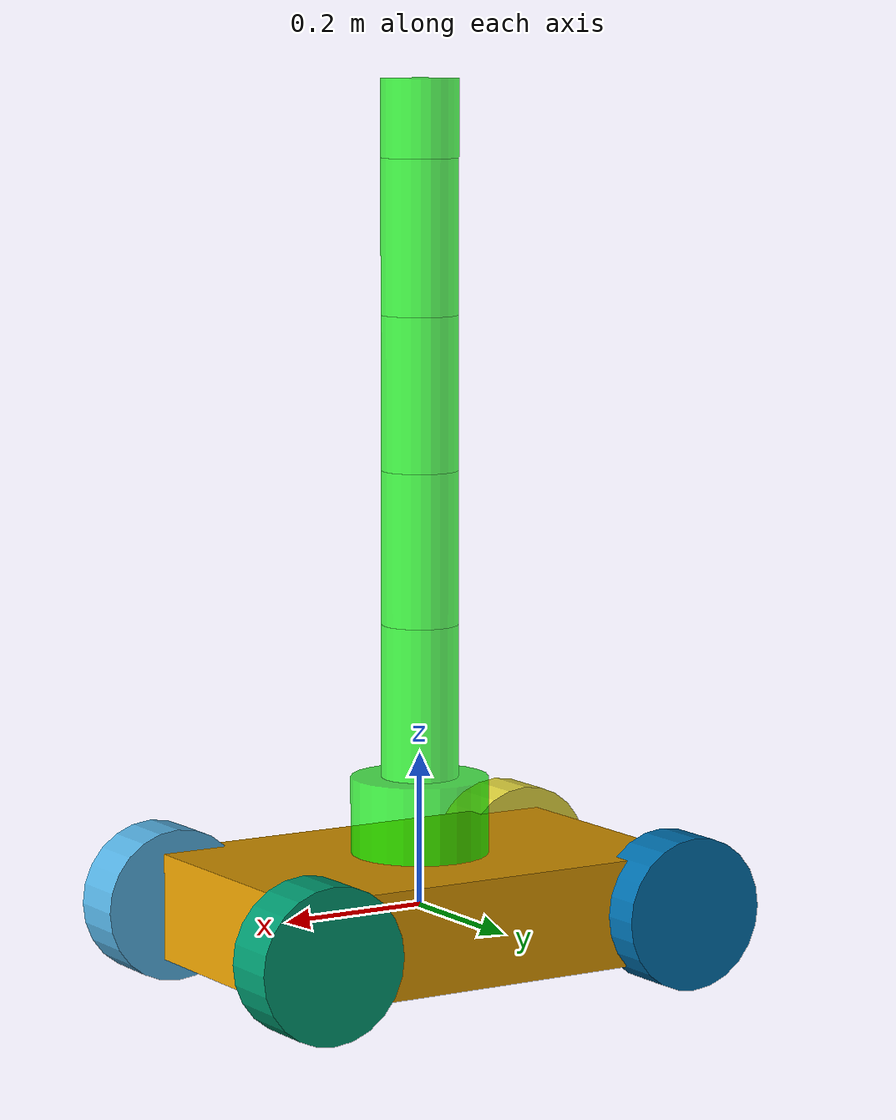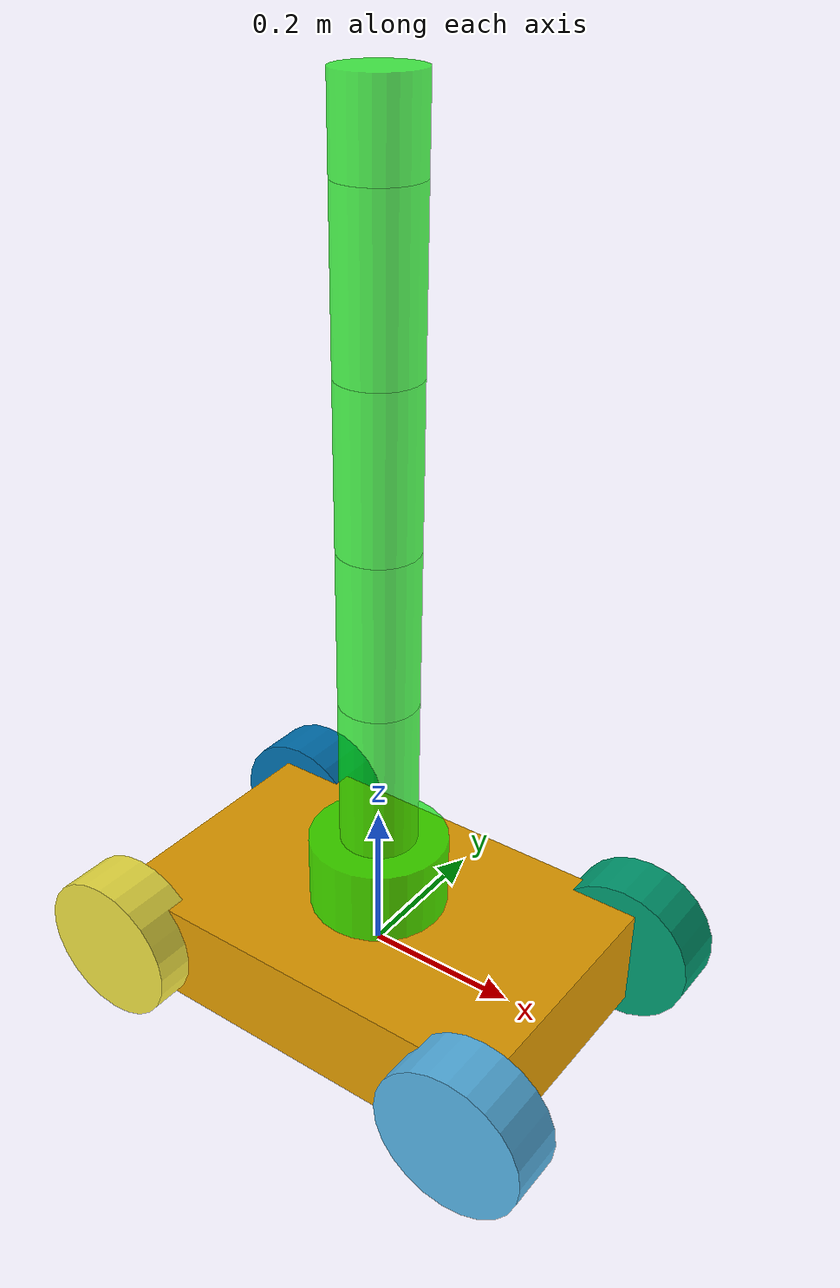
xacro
<?xml version="1.0"?>
<robot name = "youbot" xmlns:xacro="http://www.ros.org/wiki/xacro">

<!--***************************************** WHEELED BASE ******************************************-->
	<link name = "chassis">
		<inertial>
			<mass value = "20"/>
			<origin xyz = "0 0 0" rpy = "0 0 0"/>
			<inertia ixx = "0.5933" ixy = "0" ixz = "0" iyy = "0.7963" iyz = "0" izz = "0.2683"/>
		</inertial>
		<collision>
			<geometry>
					<box  size = "0.580 0.376 0.140"/>
			</geometry>
		</collision>
		<visual>
			<geometry>
					<box  size = "0.580 0.376 0.140 "/>
			</geometry>
		</visual>
	</link>

<!--join wheels with the chassis-->

  <joint name = "chassis__wheel_fl" type = "revolute">
		<origin xyz = "0.270 -0.200 0" rpy = "0 0 0"/>
		<axis xyz= "0 1 0"/>
		<parent link = "chassis"/>
		<child link = "wheel_fl"/>
		<limit effort = "1" velocity = "1" lower = "-3.14" upper = "3.14"/>
	</joint>

	<link name = "wheel_fl">
		<inertial>
			<mass value = "2"/>
			<origin xyz = "0 0 0" rpy = "1.57 0 0"/>
			<inertia ixx = "0.0022" ixy = "0" ixz = "0" iyy = "0.0022" iyz = "0" izz = "0.0025"/>
		</inertial>
		<collision>
			<origin xyz = "0 0 0" rpy = "1.57 0 0"/>
			<geometry>
					<cylinder  radius = "0.05" length = "0.076"/>
			</geometry>
		</collision>
		<visual>
			<origin xyz = "0 0 0" rpy = "1.57 0 0"/>
			<geometry>
					<cylinder  radius = "0.1" length = "0.076"/>
			</geometry>
		</visual>
	</link>

<!--join wheels with the base link-->

	<joint name = "chassis__wheel_fr" type = "revolute">
		<origin xyz = "0.270 0.200 0" rpy = "0 0 0"/>
		<axis xyz= "0 1 0"/>
		<parent link = "chassis"/>
		<child link = "wheel_fr"/>
		<limit effort = "1" velocity = "1" lower = "-3.14" upper = "3.14"/>
	</joint>

	<link name = "wheel_fr">
		<inertial>
			<mass value = "2"/>
			<origin xyz = "0 0 0" rpy = "1.57 0 0"/>
			<inertia ixx = "0.0022" ixy = "0" ixz = "0" iyy = "0.0022" iyz = "0" izz = "0.0025"/>
		</inertial>
		<collision>
			<origin xyz = "0 0 0" rpy = "1.57 0 0"/>
			<geometry>
					<cylinder  radius = "0.05" length = "0.076"/>
			</geometry>
		</collision>
		<visual>
			<origin xyz = "0 0 0" rpy = "1.57 0 0"/>
			<geometry>
					<cylinder  radius = "0.1" length = "0.076"/>
			</geometry>
		</visual>
	</link>

<!--join wheels with the base link-->

	<joint name = "chassis__wheel_rl" type = "revolute">
		<origin xyz = "-0.270 -0.200 0" rpy = "0 0 0"/>
		<axis xyz= "0 1 0"/>
		<parent link = "chassis"/>
		<child link = "wheel_rl"/>
		<limit effort = "1" velocity = "1" lower = "-3.14" upper = "3.14"/>
	</joint>

	<link name = "wheel_rl">
		<inertial>
			<mass value = "2"/>
			<origin xyz = "0 0 0" rpy = "1.57 0 0"/>
			<inertia ixx = "0.0022" ixy = "0" ixz = "0" iyy = "0.0022" iyz = "0" izz = "0.0025"/>
		</inertial>
		<collision>
			<origin xyz = "0 0 0" rpy = "1.57 0 0"/>
			<geometry>
					<cylinder  radius = "0.05" length = "0.076"/>
			</geometry>
		</collision>
		<visual>
			<origin xyz = "0 0 0" rpy = "1.57 0 0"/>
			<geometry>
					<cylinder  radius = "0.1" length = "0.076"/>
			</geometry>
		</visual>
	</link>

<!-- join the wheel to the base -->

	<joint name = "chassis__wheel_rr" type = "revolute">
		<origin xyz = "-0.270 0.200 0" rpy = "0 0 0"/>
		<axis xyz= "0 1 0"/>
		<parent link = "chassis"/>
		<child link = "wheel_rr"/>
		<limit effort = "1" velocity = "1" lower = "-3.14" upper = "3.14"/>
	</joint>

	<link name = "wheel_rr">
		<inertial>
			<mass value = "2"/>
			<origin xyz = "0 0 0" rpy = "1.57 0 0"/>
			<inertia ixx = "0.0022" ixy = "0" ixz = "0" iyy = "0.0022" iyz = "0" izz = "0.0025"/>
		</inertial>
		<collision>
			<origin xyz = "0 0 0" rpy = "1.57 0 0"/>
			<geometry>
					<cylinder  radius = "0.05" length = "0.076"/>
			</geometry>
		</collision>
		<visual>
			<origin xyz = "0 0 0" rpy = "1.57 0 0"/>
			<geometry>
					<cylinder  radius = "0.1" length = "0.076"/>
			</geometry>
		</visual>
	</link>

<!--***************************************** MANIPULATOR ******************************************-->

	<joint name="chassis__base_link" type="fixed">
		<origin xyz="0 0 0.07" rpy="0 0 0"/>
		<axis xyz="0 0 1"/>
    <parent link="chassis"/>
    <child link="base_link"/>
		<limit effort="0" velocity="0" lower="3.14" upper="-3.14"/>
	</joint>

  <link name="base_link">
		<inertial>
			<origin xyz="0 0 0.05" rpy="0 0 0"/>
			<mass value="1.0"/>
			<inertia ixx="0.1458" iyy="0.1458" izz="0.1250" ixy="0" ixz="0" iyz="0"/>
		</inertial>
		<collision>
			<origin xyz="0 0 0.05" rpy="0 0 0"/>
			<geometry>
				<cylinder radius="0.09" length="0.1"/>
			</geometry>
		</collision>
		<visual>
			<origin xyz="0 0 0.05" rpy="0 0 0"/>
			<geometry>
				<cylinder radius="0.09" length="0.1"/>
			</geometry>
			<material name="green">
				<color rgba="0 1 0 0.7"/>
			</material>
		</visual>
	</link>

<!-- base link to link 1-->

  <joint name="base_link__link_1" type="revolute">
		<origin xyz="0 0 0.1" rpy="0 0 0"/>
		<axis xyz="0 0 1"/>
    <parent link="base_link"/>
    <child link="link_1"/>
		<limit effort="0" velocity="0" lower="3.14" upper="-3.14"/>
	</joint>

	<link name="link_1">
		<inertial>
			<origin xyz="0 0 0.1" rpy="0 0 0"/>
			<mass value="1.0"/>
			<inertia ixx="0.1458" iyy="0.1458" izz="0.1250" ixy="0" ixz="0" iyz="0"/>
		</inertial>
		<collision>
			<origin xyz="0 0 0.1" rpy="0 0 0"/>
			<geometry>
				<cylinder radius="0.05" length="0.2"/>
			</geometry>
		</collision>
		<visual>
			<origin xyz="0 0 0.1" rpy="0 0 0"/>
			<geometry>
				<cylinder radius="0.05" length="0.2"/>
			</geometry>
			<material name="green">
				<color rgba="0 1 0 0.7"/>
			</material>
		</visual>
	</link>

<!-- link_1 to link_2 -->

	<joint name="link_1__link_2" type="revolute">
		<origin xyz="0 0 0.2" rpy="0 0 0"/>
		<axis xyz="0 1 0"/>
    <parent link="link_1"/>
    <child link="link_2"/>
		<limit effort="0" velocity="0" lower="3.14" upper="-3.14"/>
	</joint>

	<link name="link_2">
		<inertial>
			<origin xyz="0 0 0.1" rpy="0 0 0"/>
			<mass value="1.0"/>
			<inertia ixx="0.1458" iyy="0.1458" izz="0.1250" ixy="0" ixz="0" iyz="0"/>
		</inertial>
		<collision>
			<origin xyz="0 0 0.1" rpy="0 0 0"/>
			<geometry>
				<cylinder radius="0.05" length="0.2"/>
			</geometry>
		</collision>
		<visual>
			<origin xyz="0 0 0.1" rpy="0 0 0"/>
			<geometry>
				<cylinder radius="0.05" length="0.2"/>
			</geometry>
			<material name="green">
				<color rgba="0 1 0 0.7"/>
			</material>
		</visual>
	</link>

<!-- link_2 to link_3-->

	<joint name="link_2__link_3" type="revolute">
		<origin xyz="0 0 0.2" rpy="0 0 0"/>
		<axis xyz="0 1 0"/>
    <parent link="link_2"/>
    <child link="link_3"/>
		<limit effort="0" velocity="0" lower="3.14" upper="-3.14"/>
	</joint>

	<link name="link_3">
		<inertial>
			<origin xyz="0 0 0.1" rpy="0 0 0"/>
			<mass value="1.0"/>
			<inertia ixx="0.1458" iyy="0.1458" izz="0.1250" ixy="0" ixz="0" iyz="0"/>
		</inertial>
		<collision>
			<origin xyz="0 0 0.1" rpy="0 0 0"/>
			<geometry>
				<cylinder radius="0.05" length="0.2"/>
			</geometry>
		</collision>
		<visual>
			<origin xyz="0 0 0.1" rpy="0 0 0"/>
			<geometry>
				<cylinder radius="0.05" length="0.2"/>
			</geometry>
			<material name="green">
				<color rgba="0 1 0 0.7"/>
			</material>
		</visual>
	</link>

<!-- link_3 to link_4-->

	<joint name="link_3__link_4" type="revolute">
		<origin xyz="0 0 0.2" rpy="0 0 0"/>
		<axis xyz="0 1 0"/>
    <parent link="link_3"/>
    <child link="link_4"/>
		<limit effort="0" velocity="0" lower="3.14" upper="-3.14"/>
	</joint>

	<link name="link_4">
		<inertial>
			<origin xyz="0 0 0.1" rpy="0 0 0"/>
			<mass value="1.0"/>
			<inertia ixx="0.1458" iyy="0.1458" izz="0.1250" ixy="0" ixz="0" iyz="0"/>
		</inertial>
		<collision>
			<origin xyz="0 0 0.1" rpy="0 0 0"/>
			<geometry>
				<cylinder radius="0.05" length="0.2"/>
			</geometry>
		</collision>
		<visual>
			<origin xyz="0 0 0.1" rpy="0 0 0"/>
			<geometry>
				<cylinder radius="0.05" length="0.2"/>
			</geometry>
			<material name="green">
				<color rgba="0 1 0 0.7"/>
			</material>
		</visual>
	</link>

<!-- link_4 to end effector -->

	<joint name="link_4__endeff" type="revolute">
		<origin xyz="0 0 0.2" rpy="0 0 0"/>
		<axis xyz="0 0 1"/>
    <parent link="link_4"/>
    <child link="endeff"/>
		<limit effort="0" velocity="0" lower="3.14" upper="-3.14"/>
	</joint>

	<link name="endeff">
		<inertial>
			<origin xyz="0 0 0.05" rpy="0 0 0"/>
			<mass value="1.0"/>
			<inertia ixx="0.1458" iyy="0.1458" izz="0.1250" ixy="0" ixz="0" iyz="0"/>
		</inertial>
		<collision>
			<origin xyz="0 0 0.05" rpy="0 0 0"/>
			<geometry>
				<cylinder radius="0.05" length="0.1"/>
			</geometry>
		</collision>
		<visual>
			<origin xyz="0 0 0.05" rpy="0 0 0"/>
			<geometry>
				<cylinder radius="0.05" length="0.1"/>
			</geometry>
			<material name="green">
				<color rgba="0 1 0 0.7"/>
			</material>
		</visual>
	</link>

</robot>
